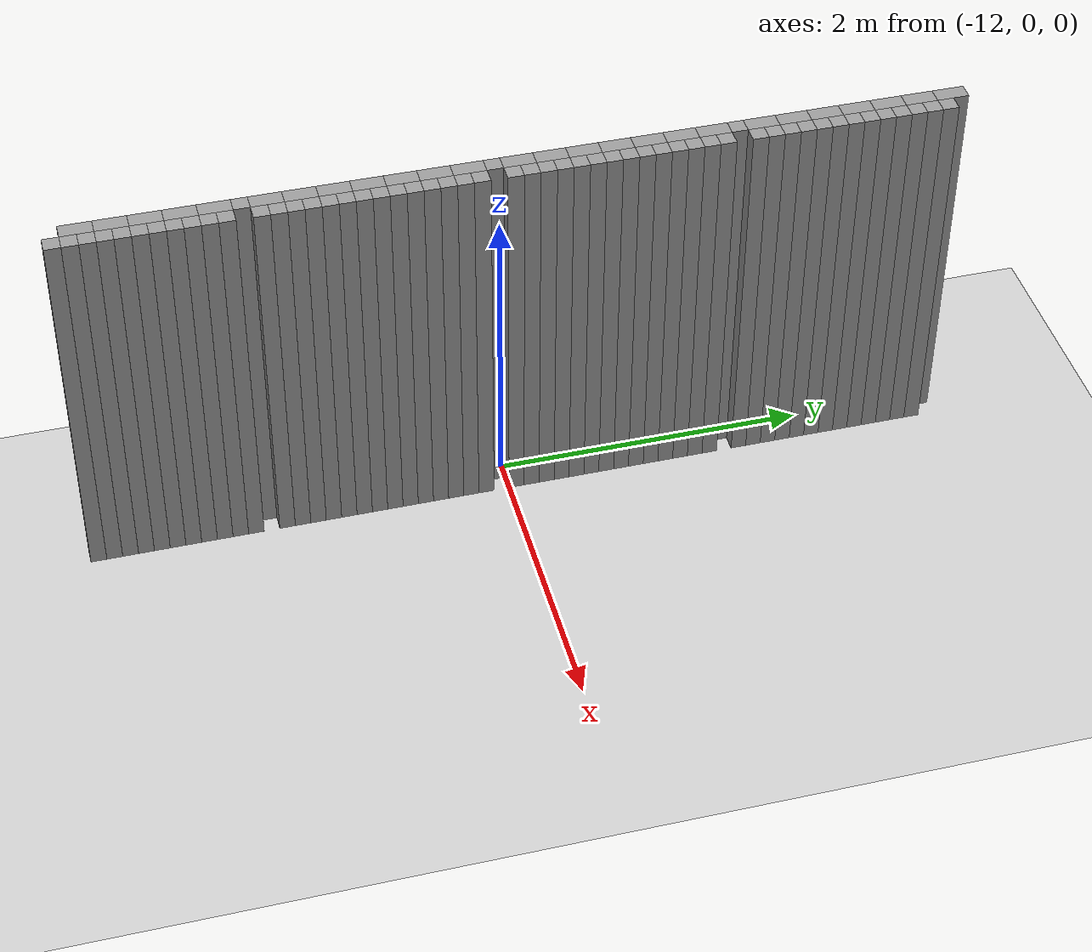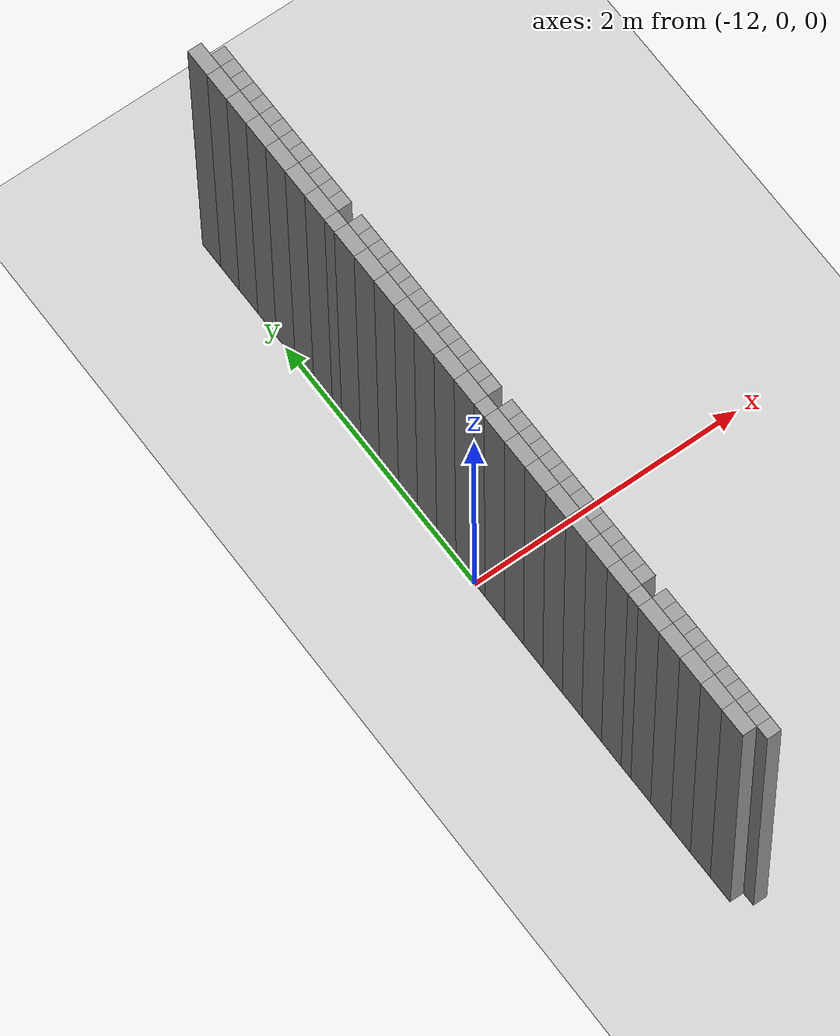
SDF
<sdf version="1.6">
 <world name="default">
  <include><uri>model://sun</uri></include>
  <include><uri>model://ground_plane</uri></include>
  <model name="stage_test">
   <static>1</static>
   <pose>-12 -12 0 0 0 0</pose>
   <link name="Wall_65">
    <pose>0.05 14.8 0 0 0 0</pose>
    <collision name="Wall_65_collision">
     <pose>0 0 1.25 0 0 0</pose>
     <geometry><box><size>0.1 0.1999999999999993 2.5</size></box></geometry>
    </collision>
    <visual name="Wall_65_visual">
     <pose>0 0 1.25 0 0 0</pose>
     <geometry><box><size>0.1 0.1999999999999993 2.5</size></box></geometry>
     <material>
      <script><uri>file://media/materials/scripts/gazebo.material</uri><name>Gazebo/Grey</name></script>
      <ambient>1 1 1 1</ambient>
     </material>
    </visual>
   </link>
   <link name="Wall_67">
    <pose>0.15 14.75 0 0 0 0</pose>
    <collision name="Wall_67_collision">
     <pose>0 0 1.25 0 0 0</pose>
     <geometry><box><size>0.1 0.09999999999999964 2.5</size></box></geometry>
    </collision>
    <visual name="Wall_67_visual">
     <pose>0 0 1.25 0 0 0</pose>
     <geometry><box><size>0.1 0.09999999999999964 2.5</size></box></geometry>
     <material>
      <script><uri>file://media/materials/scripts/gazebo.material</uri><name>Gazebo/Grey</name></script>
      <ambient>1 1 1 1</ambient>
     </material>
    </visual>
   </link>
   <link name="Wall_68">
    <pose>0.05 14.600000000000001 0 0 0 0</pose>
    <collision name="Wall_68_collision">
     <pose>0 0 1.25 0 0 0</pose>
     <geometry><box><size>0.1 0.20000000000000107 2.5</size></box></geometry>
    </collision>
    <visual name="Wall_68_visual">
     <pose>0 0 1.25 0 0 0</pose>
     <geometry><box><size>0.1 0.20000000000000107 2.5</size></box></geometry>
     <material>
      <script><uri>file://media/materials/scripts/gazebo.material</uri><name>Gazebo/Grey</name></script>
      <ambient>1 1 1 1</ambient>
     </material>
    </visual>
   </link>
   <link name="Wall_69">
    <pose>0.05 14.4 0 0 0 0</pose>
    <collision name="Wall_69_collision">
     <pose>0 0 1.25 0 0 0</pose>
     <geometry><box><size>0.1 0.1999999999999993 2.5</size></box></geometry>
    </collision>
    <visual name="Wall_69_visual">
     <pose>0 0 1.25 0 0 0</pose>
     <geometry><box><size>0.1 0.1999999999999993 2.5</size></box></geometry>
     <material>
      <script><uri>file://media/materials/scripts/gazebo.material</uri><name>Gazebo/Grey</name></script>
      <ambient>1 1 1 1</ambient>
     </material>
    </visual>
   </link>
   <link name="Wall_70">
    <pose>0.15 14.650000000000002 0 0 0 0</pose>
    <collision name="Wall_70_collision">
     <pose>0 0 1.25 0 0 0</pose>
     <geometry><box><size>0.1 0.09999999999999964 2.5</size></box></geometry>
    </collision>
    <visual name="Wall_70_visual">
     <pose>0 0 1.25 0 0 0</pose>
     <geometry><box><size>0.1 0.09999999999999964 2.5</size></box></geometry>
     <material>
      <script><uri>file://media/materials/scripts/gazebo.material</uri><name>Gazebo/Grey</name></script>
      <ambient>1 1 1 1</ambient>
     </material>
    </visual>
   </link>
   <link name="Wall_71">
    <pose>0.15 14.55 0 0 0 0</pose>
    <collision name="Wall_71_collision">
     <pose>0 0 1.25 0 0 0</pose>
     <geometry><box><size>0.1 0.10000000000000142 2.5</size></box></geometry>
    </collision>
    <visual name="Wall_71_visual">
     <pose>0 0 1.25 0 0 0</pose>
     <geometry><box><size>0.1 0.10000000000000142 2.5</size></box></geometry>
     <material>
      <script><uri>file://media/materials/scripts/gazebo.material</uri><name>Gazebo/Grey</name></script>
      <ambient>1 1 1 1</ambient>
     </material>
    </visual>
   </link>
   <link name="Wall_72">
    <pose>0.15 14.45 0 0 0 0</pose>
    <collision name="Wall_72_collision">
     <pose>0 0 1.25 0 0 0</pose>
     <geometry><box><size>0.1 0.09999999999999964 2.5</size></box></geometry>
    </collision>
    <visual name="Wall_72_visual">
     <pose>0 0 1.25 0 0 0</pose>
     <geometry><box><size>0.1 0.09999999999999964 2.5</size></box></geometry>
     <material>
      <script><uri>file://media/materials/scripts/gazebo.material</uri><name>Gazebo/Grey</name></script>
      <ambient>1 1 1 1</ambient>
     </material>
    </visual>
   </link>
   <link name="Wall_73">
    <pose>0.15 14.35 0 0 0 0</pose>
    <collision name="Wall_73_collision">
     <pose>0 0 1.25 0 0 0</pose>
     <geometry><box><size>0.1 0.09999999999999964 2.5</size></box></geometry>
    </collision>
    <visual name="Wall_73_visual">
     <pose>0 0 1.25 0 0 0</pose>
     <geometry><box><size>0.1 0.09999999999999964 2.5</size></box></geometry>
     <material>
      <script><uri>file://media/materials/scripts/gazebo.material</uri><name>Gazebo/Grey</name></script>
      <ambient>1 1 1 1</ambient>
     </material>
    </visual>
   </link>
   <link name="Wall_74">
    <pose>0.05 14.2 0 0 0 0</pose>
    <collision name="Wall_74_collision">
     <pose>0 0 1.25 0 0 0</pose>
     <geometry><box><size>0.1 0.1999999999999993 2.5</size></box></geometry>
    </collision>
    <visual name="Wall_74_visual">
     <pose>0 0 1.25 0 0 0</pose>
     <geometry><box><size>0.1 0.1999999999999993 2.5</size></box></geometry>
     <material>
      <script><uri>file://media/materials/scripts/gazebo.material</uri><name>Gazebo/Grey</name></script>
      <ambient>1 1 1 1</ambient>
     </material>
    </visual>
   </link>
   <link name="Wall_75">
    <pose>0.05 14.000000000000002 0 0 0 0</pose>
    <collision name="Wall_75_collision">
     <pose>0 0 1.25 0 0 0</pose>
     <geometry><box><size>0.1 0.20000000000000107 2.5</size></box></geometry>
    </collision>
    <visual name="Wall_75_visual">
     <pose>0 0 1.25 0 0 0</pose>
     <geometry><box><size>0.1 0.20000000000000107 2.5</size></box></geometry>
     <material>
      <script><uri>file://media/materials/scripts/gazebo.material</uri><name>Gazebo/Grey</name></script>
      <ambient>1 1 1 1</ambient>
     </material>
    </visual>
   </link>
   <link name="Wall_76">
    <pose>0.15 14.25 0 0 0 0</pose>
    <collision name="Wall_76_collision">
     <pose>0 0 1.25 0 0 0</pose>
     <geometry><box><size>0.1 0.09999999999999964 2.5</size></box></geometry>
    </collision>
    <visual name="Wall_76_visual">
     <pose>0 0 1.25 0 0 0</pose>
     <geometry><box><size>0.1 0.09999999999999964 2.5</size></box></geometry>
     <material>
      <script><uri>file://media/materials/scripts/gazebo.material</uri><name>Gazebo/Grey</name></script>
      <ambient>1 1 1 1</ambient>
     </material>
    </visual>
   </link>
   <link name="Wall_77">
    <pose>0.15 14.150000000000002 0 0 0 0</pose>
    <collision name="Wall_77_collision">
     <pose>0 0 1.25 0 0 0</pose>
     <geometry><box><size>0.1 0.09999999999999964 2.5</size></box></geometry>
    </collision>
    <visual name="Wall_77_visual">
     <pose>0 0 1.25 0 0 0</pose>
     <geometry><box><size>0.1 0.09999999999999964 2.5</size></box></geometry>
     <material>
      <script><uri>file://media/materials/scripts/gazebo.material</uri><name>Gazebo/Grey</name></script>
      <ambient>1 1 1 1</ambient>
     </material>
    </visual>
   </link>
   <link name="Wall_78">
    <pose>0.15 14.05 0 0 0 0</pose>
    <collision name="Wall_78_collision">
     <pose>0 0 1.25 0 0 0</pose>
     <geometry><box><size>0.1 0.10000000000000142 2.5</size></box></geometry>
    </collision>
    <visual name="Wall_78_visual">
     <pose>0 0 1.25 0 0 0</pose>
     <geometry><box><size>0.1 0.10000000000000142 2.5</size></box></geometry>
     <material>
      <script><uri>file://media/materials/scripts/gazebo.material</uri><name>Gazebo/Grey</name></script>
      <ambient>1 1 1 1</ambient>
     </material>
    </visual>
   </link>
   <link name="Wall_79">
    <pose>0.15 13.95 0 0 0 0</pose>
    <collision name="Wall_79_collision">
     <pose>0 0 1.25 0 0 0</pose>
     <geometry><box><size>0.1 0.09999999999999964 2.5</size></box></geometry>
    </collision>
    <visual name="Wall_79_visual">
     <pose>0 0 1.25 0 0 0</pose>
     <geometry><box><size>0.1 0.09999999999999964 2.5</size></box></geometry>
     <material>
      <script><uri>file://media/materials/scripts/gazebo.material</uri><name>Gazebo/Grey</name></script>
      <ambient>1 1 1 1</ambient>
     </material>
    </visual>
   </link>
   <link name="Wall_80">
    <pose>0.05 13.8 0 0 0 0</pose>
    <collision name="Wall_80_collision">
     <pose>0 0 1.25 0 0 0</pose>
     <geometry><box><size>0.1 0.1999999999999993 2.5</size></box></geometry>
    </collision>
    <visual name="Wall_80_visual">
     <pose>0 0 1.25 0 0 0</pose>
     <geometry><box><size>0.1 0.1999999999999993 2.5</size></box></geometry>
     <material>
      <script><uri>file://media/materials/scripts/gazebo.material</uri><name>Gazebo/Grey</name></script>
      <ambient>1 1 1 1</ambient>
     </material>
    </visual>
   </link>
   <link name="Wall_81">
    <pose>0.05 13.600000000000001 0 0 0 0</pose>
    <collision name="Wall_81_collision">
     <pose>0 0 1.25 0 0 0</pose>
     <geometry><box><size>0.1 0.20000000000000107 2.5</size></box></geometry>
    </collision>
    <visual name="Wall_81_visual">
     <pose>0 0 1.25 0 0 0</pose>
     <geometry><box><size>0.1 0.20000000000000107 2.5</size></box></geometry>
     <material>
      <script><uri>file://media/materials/scripts/gazebo.material</uri><name>Gazebo/Grey</name></script>
      <ambient>1 1 1 1</ambient>
     </material>
    </visual>
   </link>
   <link name="Wall_82">
    <pose>0.15 13.85 0 0 0 0</pose>
    <collision name="Wall_82_collision">
     <pose>0 0 1.25 0 0 0</pose>
     <geometry><box><size>0.1 0.09999999999999964 2.5</size></box></geometry>
    </collision>
    <visual name="Wall_82_visual">
     <pose>0 0 1.25 0 0 0</pose>
     <geometry><box><size>0.1 0.09999999999999964 2.5</size></box></geometry>
     <material>
      <script><uri>file://media/materials/scripts/gazebo.material</uri><name>Gazebo/Grey</name></script>
      <ambient>1 1 1 1</ambient>
     </material>
    </visual>
   </link>
   <link name="Wall_83">
    <pose>0.15 13.75 0 0 0 0</pose>
    <collision name="Wall_83_collision">
     <pose>0 0 1.25 0 0 0</pose>
     <geometry><box><size>0.1 0.09999999999999964 2.5</size></box></geometry>
    </collision>
    <visual name="Wall_83_visual">
     <pose>0 0 1.25 0 0 0</pose>
     <geometry><box><size>0.1 0.09999999999999964 2.5</size></box></geometry>
     <material>
      <script><uri>file://media/materials/scripts/gazebo.material</uri><name>Gazebo/Grey</name></script>
      <ambient>1 1 1 1</ambient>
     </material>
    </visual>
   </link>
   <link name="Wall_84">
    <pose>0.15 13.650000000000002 0 0 0 0</pose>
    <collision name="Wall_84_collision">
     <pose>0 0 1.25 0 0 0</pose>
     <geometry><box><size>0.1 0.09999999999999964 2.5</size></box></geometry>
    </collision>
    <visual name="Wall_84_visual">
     <pose>0 0 1.25 0 0 0</pose>
     <geometry><box><size>0.1 0.09999999999999964 2.5</size></box></geometry>
     <material>
      <script><uri>file://media/materials/scripts/gazebo.material</uri><name>Gazebo/Grey</name></script>
      <ambient>1 1 1 1</ambient>
     </material>
    </visual>
   </link>
   <link name="Wall_85">
    <pose>0.15 13.55 0 0 0 0</pose>
    <collision name="Wall_85_collision">
     <pose>0 0 1.25 0 0 0</pose>
     <geometry><box><size>0.1 0.10000000000000142 2.5</size></box></geometry>
    </collision>
    <visual name="Wall_85_visual">
     <pose>0 0 1.25 0 0 0</pose>
     <geometry><box><size>0.1 0.10000000000000142 2.5</size></box></geometry>
     <material>
      <script><uri>file://media/materials/scripts/gazebo.material</uri><name>Gazebo/Grey</name></script>
      <ambient>1 1 1 1</ambient>
     </material>
    </visual>
   </link>
   <link name="Wall_86">
    <pose>0.05 13.45 0 0 0 0</pose>
    <collision name="Wall_86_collision">
     <pose>0 0 1.25 0 0 0</pose>
     <geometry><box><size>0.1 0.09999999999999964 2.5</size></box></geometry>
    </collision>
    <visual name="Wall_86_visual">
     <pose>0 0 1.25 0 0 0</pose>
     <geometry><box><size>0.1 0.09999999999999964 2.5</size></box></geometry>
     <material>
      <script><uri>file://media/materials/scripts/gazebo.material</uri><name>Gazebo/Grey</name></script>
      <ambient>1 1 1 1</ambient>
     </material>
    </visual>
   </link>
   <link name="Wall_87">
    <pose>0.05 13.3 0 0 0 0</pose>
    <collision name="Wall_87_collision">
     <pose>0 0 1.25 0 0 0</pose>
     <geometry><box><size>0.1 0.1999999999999993 2.5</size></box></geometry>
    </collision>
    <visual name="Wall_87_visual">
     <pose>0 0 1.25 0 0 0</pose>
     <geometry><box><size>0.1 0.1999999999999993 2.5</size></box></geometry>
     <material>
      <script><uri>file://media/materials/scripts/gazebo.material</uri><name>Gazebo/Grey</name></script>
      <ambient>1 1 1 1</ambient>
     </material>
    </visual>
   </link>
   <link name="Wall_88">
    <pose>0.15 13.35 0 0 0 0</pose>
    <collision name="Wall_88_collision">
     <pose>0 0 1.25 0 0 0</pose>
     <geometry><box><size>0.1 0.09999999999999964 2.5</size></box></geometry>
    </collision>
    <visual name="Wall_88_visual">
     <pose>0 0 1.25 0 0 0</pose>
     <geometry><box><size>0.1 0.09999999999999964 2.5</size></box></geometry>
     <material>
      <script><uri>file://media/materials/scripts/gazebo.material</uri><name>Gazebo/Grey</name></script>
      <ambient>1 1 1 1</ambient>
     </material>
    </visual>
   </link>
   <link name="Wall_89">
    <pose>0.15 13.25 0 0 0 0</pose>
    <collision name="Wall_89_collision">
     <pose>0 0 1.25 0 0 0</pose>
     <geometry><box><size>0.1 0.09999999999999964 2.5</size></box></geometry>
    </collision>
    <visual name="Wall_89_visual">
     <pose>0 0 1.25 0 0 0</pose>
     <geometry><box><size>0.1 0.09999999999999964 2.5</size></box></geometry>
     <material>
      <script><uri>file://media/materials/scripts/gazebo.material</uri><name>Gazebo/Grey</name></script>
      <ambient>1 1 1 1</ambient>
     </material>
    </visual>
   </link>
   <link name="Wall_90">
    <pose>0.05 13.100000000000001 0 0 0 0</pose>
    <collision name="Wall_90_collision">
     <pose>0 0 1.25 0 0 0</pose>
     <geometry><box><size>0.1 0.20000000000000107 2.5</size></box></geometry>
    </collision>
    <visual name="Wall_90_visual">
     <pose>0 0 1.25 0 0 0</pose>
     <geometry><box><size>0.1 0.20000000000000107 2.5</size></box></geometry>
     <material>
      <script><uri>file://media/materials/scripts/gazebo.material</uri><name>Gazebo/Grey</name></script>
      <ambient>1 1 1 1</ambient>
     </material>
    </visual>
   </link>
   <link name="Wall_91">
    <pose>0.05 12.9 0 0 0 0</pose>
    <collision name="Wall_91_collision">
     <pose>0 0 1.25 0 0 0</pose>
     <geometry><box><size>0.1 0.1999999999999993 2.5</size></box></geometry>
    </collision>
    <visual name="Wall_91_visual">
     <pose>0 0 1.25 0 0 0</pose>
     <geometry><box><size>0.1 0.1999999999999993 2.5</size></box></geometry>
     <material>
      <script><uri>file://media/materials/scripts/gazebo.material</uri><name>Gazebo/Grey</name></script>
      <ambient>1 1 1 1</ambient>
     </material>
    </visual>
   </link>
   <link name="Wall_92">
    <pose>0.15 13.150000000000002 0 0 0 0</pose>
    <collision name="Wall_92_collision">
     <pose>0 0 1.25 0 0 0</pose>
     <geometry><box><size>0.1 0.09999999999999964 2.5</size></box></geometry>
    </collision>
    <visual name="Wall_92_visual">
     <pose>0 0 1.25 0 0 0</pose>
     <geometry><box><size>0.1 0.09999999999999964 2.5</size></box></geometry>
     <material>
      <script><uri>file://media/materials/scripts/gazebo.material</uri><name>Gazebo/Grey</name></script>
      <ambient>1 1 1 1</ambient>
     </material>
    </visual>
   </link>
   <link name="Wall_93">
    <pose>0.15 13.05 0 0 0 0</pose>
    <collision name="Wall_93_collision">
     <pose>0 0 1.25 0 0 0</pose>
     <geometry><box><size>0.1 0.10000000000000142 2.5</size></box></geometry>
    </collision>
    <visual name="Wall_93_visual">
     <pose>0 0 1.25 0 0 0</pose>
     <geometry><box><size>0.1 0.10000000000000142 2.5</size></box></geometry>
     <material>
      <script><uri>file://media/materials/scripts/gazebo.material</uri><name>Gazebo/Grey</name></script>
      <ambient>1 1 1 1</ambient>
     </material>
    </visual>
   </link>
   <link name="Wall_94">
    <pose>0.15 12.95 0 0 0 0</pose>
    <collision name="Wall_94_collision">
     <pose>0 0 1.25 0 0 0</pose>
     <geometry><box><size>0.1 0.09999999999999964 2.5</size></box></geometry>
    </collision>
    <visual name="Wall_94_visual">
     <pose>0 0 1.25 0 0 0</pose>
     <geometry><box><size>0.1 0.09999999999999964 2.5</size></box></geometry>
     <material>
      <script><uri>file://media/materials/scripts/gazebo.material</uri><name>Gazebo/Grey</name></script>
      <ambient>1 1 1 1</ambient>
     </material>
    </visual>
   </link>
   <link name="Wall_95">
    <pose>0.15 12.85 0 0 0 0</pose>
    <collision name="Wall_95_collision">
     <pose>0 0 1.25 0 0 0</pose>
     <geometry><box><size>0.1 0.09999999999999964 2.5</size></box></geometry>
    </collision>
    <visual name="Wall_95_visual">
     <pose>0 0 1.25 0 0 0</pose>
     <geometry><box><size>0.1 0.09999999999999964 2.5</size></box></geometry>
     <material>
      <script><uri>file://media/materials/scripts/gazebo.material</uri><name>Gazebo/Grey</name></script>
      <ambient>1 1 1 1</ambient>
     </material>
    </visual>
   </link>
   <link name="Wall_96">
    <pose>0.05 12.7 0 0 0 0</pose>
    <collision name="Wall_96_collision">
     <pose>0 0 1.25 0 0 0</pose>
     <geometry><box><size>0.1 0.1999999999999993 2.5</size></box></geometry>
    </collision>
    <visual name="Wall_96_visual">
     <pose>0 0 1.25 0 0 0</pose>
     <geometry><box><size>0.1 0.1999999999999993 2.5</size></box></geometry>
     <material>
      <script><uri>file://media/materials/scripts/gazebo.material</uri><name>Gazebo/Grey</name></script>
      <ambient>1 1 1 1</ambient>
     </material>
    </visual>
   </link>
   <link name="Wall_97">
    <pose>0.05 12.500000000000002 0 0 0 0</pose>
    <collision name="Wall_97_collision">
     <pose>0 0 1.25 0 0 0</pose>
     <geometry><box><size>0.1 0.20000000000000107 2.5</size></box></geometry>
    </collision>
    <visual name="Wall_97_visual">
     <pose>0 0 1.25 0 0 0</pose>
     <geometry><box><size>0.1 0.20000000000000107 2.5</size></box></geometry>
     <material>
      <script><uri>file://media/materials/scripts/gazebo.material</uri><name>Gazebo/Grey</name></script>
      <ambient>1 1 1 1</ambient>
     </material>
    </visual>
   </link>
   <link name="Wall_98">
    <pose>0.15 12.75 0 0 0 0</pose>
    <collision name="Wall_98_collision">
     <pose>0 0 1.25 0 0 0</pose>
     <geometry><box><size>0.1 0.09999999999999964 2.5</size></box></geometry>
    </collision>
    <visual name="Wall_98_visual">
     <pose>0 0 1.25 0 0 0</pose>
     <geometry><box><size>0.1 0.09999999999999964 2.5</size></box></geometry>
     <material>
      <script><uri>file://media/materials/scripts/gazebo.material</uri><name>Gazebo/Grey</name></script>
      <ambient>1 1 1 1</ambient>
     </material>
    </visual>
   </link>
   <link name="Wall_99">
    <pose>0.15 12.650000000000002 0 0 0 0</pose>
    <collision name="Wall_99_collision">
     <pose>0 0 1.25 0 0 0</pose>
     <geometry><box><size>0.1 0.09999999999999964 2.5</size></box></geometry>
    </collision>
    <visual name="Wall_99_visual">
     <pose>0 0 1.25 0 0 0</pose>
     <geometry><box><size>0.1 0.09999999999999964 2.5</size></box></geometry>
     <material>
      <script><uri>file://media/materials/scripts/gazebo.material</uri><name>Gazebo/Grey</name></script>
      <ambient>1 1 1 1</ambient>
     </material>
    </visual>
   </link>
   <link name="Wall_100">
    <pose>0.15 12.55 0 0 0 0</pose>
    <collision name="Wall_100_collision">
     <pose>0 0 1.25 0 0 0</pose>
     <geometry><box><size>0.1 0.10000000000000142 2.5</size></box></geometry>
    </collision>
    <visual name="Wall_100_visual">
     <pose>0 0 1.25 0 0 0</pose>
     <geometry><box><size>0.1 0.10000000000000142 2.5</size></box></geometry>
     <material>
      <script><uri>file://media/materials/scripts/gazebo.material</uri><name>Gazebo/Grey</name></script>
      <ambient>1 1 1 1</ambient>
     </material>
    </visual>
   </link>
   <link name="Wall_101">
    <pose>0.15 12.45 0 0 0 0</pose>
    <collision name="Wall_101_collision">
     <pose>0 0 1.25 0 0 0</pose>
     <geometry><box><size>0.1 0.09999999999999964 2.5</size></box></geometry>
    </collision>
    <visual name="Wall_101_visual">
     <pose>0 0 1.25 0 0 0</pose>
     <geometry><box><size>0.1 0.09999999999999964 2.5</size></box></geometry>
     <material>
      <script><uri>file://media/materials/scripts/gazebo.material</uri><name>Gazebo/Grey</name></script>
      <ambient>1 1 1 1</ambient>
     </material>
    </visual>
   </link>
   <link name="Wall_102">
    <pose>0.05 12.3 0 0 0 0</pose>
    <collision name="Wall_102_collision">
     <pose>0 0 1.25 0 0 0</pose>
     <geometry><box><size>0.1 0.1999999999999993 2.5</size></box></geometry>
    </collision>
    <visual name="Wall_102_visual">
     <pose>0 0 1.25 0 0 0</pose>
     <geometry><box><size>0.1 0.1999999999999993 2.5</size></box></geometry>
     <material>
      <script><uri>file://media/materials/scripts/gazebo.material</uri><name>Gazebo/Grey</name></script>
      <ambient>1 1 1 1</ambient>
     </material>
    </visual>
   </link>
   <link name="Wall_103">
    <pose>0.05 12.100000000000001 0 0 0 0</pose>
    <collision name="Wall_103_collision">
     <pose>0 0 1.25 0 0 0</pose>
     <geometry><box><size>0.1 0.20000000000000107 2.5</size></box></geometry>
    </collision>
    <visual name="Wall_103_visual">
     <pose>0 0 1.25 0 0 0</pose>
     <geometry><box><size>0.1 0.20000000000000107 2.5</size></box></geometry>
     <material>
      <script><uri>file://media/materials/scripts/gazebo.material</uri><name>Gazebo/Grey</name></script>
      <ambient>1 1 1 1</ambient>
     </material>
    </visual>
   </link>
   <link name="Wall_104">
    <pose>0.15 12.35 0 0 0 0</pose>
    <collision name="Wall_104_collision">
     <pose>0 0 1.25 0 0 0</pose>
     <geometry><box><size>0.1 0.09999999999999964 2.5</size></box></geometry>
    </collision>
    <visual name="Wall_104_visual">
     <pose>0 0 1.25 0 0 0</pose>
     <geometry><box><size>0.1 0.09999999999999964 2.5</size></box></geometry>
     <material>
      <script><uri>file://media/materials/scripts/gazebo.material</uri><name>Gazebo/Grey</name></script>
      <ambient>1 1 1 1</ambient>
     </material>
    </visual>
   </link>
   <link name="Wall_105">
    <pose>0.15 12.25 0 0 0 0</pose>
    <collision name="Wall_105_collision">
     <pose>0 0 1.25 0 0 0</pose>
     <geometry><box><size>0.1 0.09999999999999964 2.5</size></box></geometry>
    </collision>
    <visual name="Wall_105_visual">
     <pose>0 0 1.25 0 0 0</pose>
     <geometry><box><size>0.1 0.09999999999999964 2.5</size></box></geometry>
     <material>
      <script><uri>file://media/materials/scripts/gazebo.material</uri><name>Gazebo/Grey</name></script>
      <ambient>1 1 1 1</ambient>
     </material>
    </visual>
   </link>
   <link name="Wall_106">
    <pose>0.15 12.150000000000002 0 0 0 0</pose>
    <collision name="Wall_106_collision">
     <pose>0 0 1.25 0 0 0</pose>
     <geometry><box><size>0.1 0.09999999999999964 2.5</size></box></geometry>
    </collision>
    <visual name="Wall_106_visual">
     <pose>0 0 1.25 0 0 0</pose>
     <geometry><box><size>0.1 0.09999999999999964 2.5</size></box></geometry>
     <material>
      <script><uri>file://media/materials/scripts/gazebo.material</uri><name>Gazebo/Grey</name></script>
      <ambient>1 1 1 1</ambient>
     </material>
    </visual>
   </link>
   <link name="Wall_107">
    <pose>0.15 12.05 0 0 0 0</pose>
    <collision name="Wall_107_collision">
     <pose>0 0 1.25 0 0 0</pose>
     <geometry><box><size>0.1 0.10000000000000142 2.5</size></box></geometry>
    </collision>
    <visual name="Wall_107_visual">
     <pose>0 0 1.25 0 0 0</pose>
     <geometry><box><size>0.1 0.10000000000000142 2.5</size></box></geometry>
     <material>
      <script><uri>file://media/materials/scripts/gazebo.material</uri><name>Gazebo/Grey</name></script>
      <ambient>1 1 1 1</ambient>
     </material>
    </visual>
   </link>
   <link name="Wall_280">
    <pose>0.05 11.95 0 0 0 0</pose>
    <collision name="Wall_280_collision">
     <pose>0 0 1.25 0 0 0</pose>
     <geometry><box><size>0.1 0.09999999999999964 2.5</size></box></geometry>
    </collision>
    <visual name="Wall_280_visual">
     <pose>0 0 1.25 0 0 0</pose>
     <geometry><box><size>0.1 0.09999999999999964 2.5</size></box></geometry>
     <material>
      <script><uri>file://media/materials/scripts/gazebo.material</uri><name>Gazebo/Grey</name></script>
      <ambient>1 1 1 1</ambient>
     </material>
    </visual>
   </link>
   <link name="Wall_281">
    <pose>0.05 11.8 0 0 0 0</pose>
    <collision name="Wall_281_collision">
     <pose>0 0 1.25 0 0 0</pose>
     <geometry><box><size>0.1 0.1999999999999993 2.5</size></box></geometry>
    </collision>
    <visual name="Wall_281_visual">
     <pose>0 0 1.25 0 0 0</pose>
     <geometry><box><size>0.1 0.1999999999999993 2.5</size></box></geometry>
     <material>
      <script><uri>file://media/materials/scripts/gazebo.material</uri><name>Gazebo/Grey</name></script>
      <ambient>1 1 1 1</ambient>
     </material>
    </visual>
   </link>
   <link name="Wall_282">
    <pose>0.15 11.85 0 0 0 0</pose>
    <collision name="Wall_282_collision">
     <pose>0 0 1.25 0 0 0</pose>
     <geometry><box><size>0.1 0.09999999999999964 2.5</size></box></geometry>
    </collision>
    <visual name="Wall_282_visual">
     <pose>0 0 1.25 0 0 0</pose>
     <geometry><box><size>0.1 0.09999999999999964 2.5</size></box></geometry>
     <material>
      <script><uri>file://media/materials/scripts/gazebo.material</uri><name>Gazebo/Grey</name></script>
      <ambient>1 1 1 1</ambient>
     </material>
    </visual>
   </link>
   <link name="Wall_283">
    <pose>0.15 11.75 0 0 0 0</pose>
    <collision name="Wall_283_collision">
     <pose>0 0 1.25 0 0 0</pose>
     <geometry><box><size>0.1 0.09999999999999964 2.5</size></box></geometry>
    </collision>
    <visual name="Wall_283_visual">
     <pose>0 0 1.25 0 0 0</pose>
     <geometry><box><size>0.1 0.09999999999999964 2.5</size></box></geometry>
     <material>
      <script><uri>file://media/materials/scripts/gazebo.material</uri><name>Gazebo/Grey</name></script>
      <ambient>1 1 1 1</ambient>
     </material>
    </visual>
   </link>
   <link name="Wall_284">
    <pose>0.05 11.600000000000001 0 0 0 0</pose>
    <collision name="Wall_284_collision">
     <pose>0 0 1.25 0 0 0</pose>
     <geometry><box><size>0.1 0.20000000000000107 2.5</size></box></geometry>
    </collision>
    <visual name="Wall_284_visual">
     <pose>0 0 1.25 0 0 0</pose>
     <geometry><box><size>0.1 0.20000000000000107 2.5</size></box></geometry>
     <material>
      <script><uri>file://media/materials/scripts/gazebo.material</uri><name>Gazebo/Grey</name></script>
      <ambient>1 1 1 1</ambient>
     </material>
    </visual>
   </link>
   <link name="Wall_285">
    <pose>0.05 11.4 0 0 0 0</pose>
    <collision name="Wall_285_collision">
     <pose>0 0 1.25 0 0 0</pose>
     <geometry><box><size>0.1 0.1999999999999993 2.5</size></box></geometry>
    </collision>
    <visual name="Wall_285_visual">
     <pose>0 0 1.25 0 0 0</pose>
     <geometry><box><size>0.1 0.1999999999999993 2.5</size></box></geometry>
     <material>
      <script><uri>file://media/materials/scripts/gazebo.material</uri><name>Gazebo/Grey</name></script>
      <ambient>1 1 1 1</ambient>
     </material>
    </visual>
   </link>
   <link name="Wall_286">
    <pose>0.15 11.650000000000002 0 0 0 0</pose>
    <collision name="Wall_286_collision">
     <pose>0 0 1.25 0 0 0</pose>
     <geometry><box><size>0.1 0.09999999999999964 2.5</size></box></geometry>
    </collision>
    <visual name="Wall_286_visual">
     <pose>0 0 1.25 0 0 0</pose>
     <geometry><box><size>0.1 0.09999999999999964 2.5</size></box></geometry>
     <material>
      <script><uri>file://media/materials/scripts/gazebo.material</uri><name>Gazebo/Grey</name></script>
      <ambient>1 1 1 1</ambient>
     </material>
    </visual>
   </link>
   <link name="Wall_287">
    <pose>0.15 11.55 0 0 0 0</pose>
    <collision name="Wall_287_collision">
     <pose>0 0 1.25 0 0 0</pose>
     <geometry><box><size>0.1 0.10000000000000142 2.5</size></box></geometry>
    </collision>
    <visual name="Wall_287_visual">
     <pose>0 0 1.25 0 0 0</pose>
     <geometry><box><size>0.1 0.10000000000000142 2.5</size></box></geometry>
     <material>
      <script><uri>file://media/materials/scripts/gazebo.material</uri><name>Gazebo/Grey</name></script>
      <ambient>1 1 1 1</ambient>
     </material>
    </visual>
   </link>
   <link name="Wall_288">
    <pose>0.15 11.45 0 0 0 0</pose>
    <collision name="Wall_288_collision">
     <pose>0 0 1.25 0 0 0</pose>
     <geometry><box><size>0.1 0.09999999999999964 2.5</size></box></geometry>
    </collision>
    <visual name="Wall_288_visual">
     <pose>0 0 1.25 0 0 0</pose>
     <geometry><box><size>0.1 0.09999999999999964 2.5</size></box></geometry>
     <material>
      <script><uri>file://media/materials/scripts/gazebo.material</uri><name>Gazebo/Grey</name></script>
      <ambient>1 1 1 1</ambient>
     </material>
    </visual>
   </link>
   <link name="Wall_289">
    <pose>0.15 11.35 0 0 0 0</pose>
    <collision name="Wall_289_collision">
     <pose>0 0 1.25 0 0 0</pose>
     <geometry><box><size>0.1 0.09999999999999964 2.5</size></box></geometry>
    </collision>
    <visual name="Wall_289_visual">
     <pose>0 0 1.25 0 0 0</pose>
     <geometry><box><size>0.1 0.09999999999999964 2.5</size></box></geometry>
     <material>
      <script><uri>file://media/materials/scripts/gazebo.material</uri><name>Gazebo/Grey</name></script>
      <ambient>1 1 1 1</ambient>
     </material>
    </visual>
   </link>
   <link name="Wall_290">
    <pose>0.05 11.2 0 0 0 0</pose>
    <collision name="Wall_290_collision">
     <pose>0 0 1.25 0 0 0</pose>
     <geometry><box><size>0.1 0.1999999999999993 2.5</size></box></geometry>
    </collision>
    <visual name="Wall_290_visual">
     <pose>0 0 1.25 0 0 0</pose>
     <geometry><box><size>0.1 0.1999999999999993 2.5</size></box></geometry>
     <material>
      <script><uri>file://media/materials/scripts/gazebo.material</uri><name>Gazebo/Grey</name></script>
      <ambient>1 1 1 1</ambient>
     </material>
    </visual>
   </link>
   <link name="Wall_291">
    <pose>0.05 11.000000000000002 0 0 0 0</pose>
    <collision name="Wall_291_collision">
     <pose>0 0 1.25 0 0 0</pose>
     <geometry><box><size>0.1 0.20000000000000107 2.5</size></box></geometry>
    </collision>
    <visual name="Wall_291_visual">
     <pose>0 0 1.25 0 0 0</pose>
     <geometry><box><size>0.1 0.20000000000000107 2.5</size></box></geometry>
     <material>
      <script><uri>file://media/materials/scripts/gazebo.material</uri><name>Gazebo/Grey</name></script>
      <ambient>1 1 1 1</ambient>
     </material>
    </visual>
   </link>
   <link name="Wall_292">
    <pose>0.15 11.25 0 0 0 0</pose>
    <collision name="Wall_292_collision">
     <pose>0 0 1.25 0 0 0</pose>
     <geometry><box><size>0.1 0.09999999999999964 2.5</size></box></geometry>
    </collision>
    <visual name="Wall_292_visual">
     <pose>0 0 1.25 0 0 0</pose>
     <geometry><box><size>0.1 0.09999999999999964 2.5</size></box></geometry>
     <material>
      <script><uri>file://media/materials/scripts/gazebo.material</uri><name>Gazebo/Grey</name></script>
      <ambient>1 1 1 1</ambient>
     </material>
    </visual>
   </link>
   <link name="Wall_293">
    <pose>0.15 11.150000000000002 0 0 0 0</pose>
    <collision name="Wall_293_collision">
     <pose>0 0 1.25 0 0 0</pose>
     <geometry><box><size>0.1 0.09999999999999964 2.5</size></box></geometry>
    </collision>
    <visual name="Wall_293_visual">
     <pose>0 0 1.25 0 0 0</pose>
     <geometry><box><size>0.1 0.09999999999999964 2.5</size></box></geometry>
     <material>
      <script><uri>file://media/materials/scripts/gazebo.material</uri><name>Gazebo/Grey</name></script>
      <ambient>1 1 1 1</ambient>
     </material>
    </visual>
   </link>
   <link name="Wall_294">
    <pose>0.15 11.05 0 0 0 0</pose>
    <collision name="Wall_294_collision">
     <pose>0 0 1.25 0 0 0</pose>
     <geometry><box><size>0.1 0.10000000000000142 2.5</size></box></geometry>
    </collision>
    <visual name="Wall_294_visual">
     <pose>0 0 1.25 0 0 0</pose>
     <geometry><box><size>0.1 0.10000000000000142 2.5</size></box></geometry>
     <material>
      <script><uri>file://media/materials/scripts/gazebo.material</uri><name>Gazebo/Grey</name></script>
      <ambient>1 1 1 1</ambient>
     </material>
    </visual>
   </link>
   <link name="Wall_295">
    <pose>0.15 10.95 0 0 0 0</pose>
    <collision name="Wall_295_collision">
     <pose>0 0 1.25 0 0 0</pose>
     <geometry><box><size>0.1 0.09999999999999964 2.5</size></box></geometry>
    </collision>
    <visual name="Wall_295_visual">
     <pose>0 0 1.25 0 0 0</pose>
     <geometry><box><size>0.1 0.09999999999999964 2.5</size></box></geometry>
     <material>
      <script><uri>file://media/materials/scripts/gazebo.material</uri><name>Gazebo/Grey</name></script>
      <ambient>1 1 1 1</ambient>
     </material>
    </visual>
   </link>
   <link name="Wall_296">
    <pose>0.05 10.8 0 0 0 0</pose>
    <collision name="Wall_296_collision">
     <pose>0 0 1.25 0 0 0</pose>
     <geometry><box><size>0.1 0.1999999999999993 2.5</size></box></geometry>
    </collision>
    <visual name="Wall_296_visual">
     <pose>0 0 1.25 0 0 0</pose>
     <geometry><box><size>0.1 0.1999999999999993 2.5</size></box></geometry>
     <material>
      <script><uri>file://media/materials/scripts/gazebo.material</uri><name>Gazebo/Grey</name></script>
      <ambient>1 1 1 1</ambient>
     </material>
    </visual>
   </link>
   <link name="Wall_297">
    <pose>0.05 10.600000000000001 0 0 0 0</pose>
    <collision name="Wall_297_collision">
     <pose>0 0 1.25 0 0 0</pose>
     <geometry><box><size>0.1 0.20000000000000107 2.5</size></box></geometry>
    </collision>
    <visual name="Wall_297_visual">
     <pose>0 0 1.25 0 0 0</pose>
     <geometry><box><size>0.1 0.20000000000000107 2.5</size></box></geometry>
     <material>
      <script><uri>file://media/materials/scripts/gazebo.material</uri><name>Gazebo/Grey</name></script>
      <ambient>1 1 1 1</ambient>
     </material>
    </visual>
   </link>
   <link name="Wall_298">
    <pose>0.15 10.85 0 0 0 0</pose>
    <collision name="Wall_298_collision">
     <pose>0 0 1.25 0 0 0</pose>
     <geometry><box><size>0.1 0.09999999999999964 2.5</size></box></geometry>
    </collision>
    <visual name="Wall_298_visual">
     <pose>0 0 1.25 0 0 0</pose>
     <geometry><box><size>0.1 0.09999999999999964 2.5</size></box></geometry>
     <material>
      <script><uri>file://media/materials/scripts/gazebo.material</uri><name>Gazebo/Grey</name></script>
      <ambient>1 1 1 1</ambient>
     </material>
    </visual>
   </link>
   <link name="Wall_299">
    <pose>0.15 10.75 0 0 0 0</pose>
    <collision name="Wall_299_collision">
     <pose>0 0 1.25 0 0 0</pose>
     <geometry><box><size>0.1 0.09999999999999964 2.5</size></box></geometry>
    </collision>
    <visual name="Wall_299_visual">
     <pose>0 0 1.25 0 0 0</pose>
     <geometry><box><size>0.1 0.09999999999999964 2.5</size></box></geometry>
     <material>
      <script><uri>file://media/materials/scripts/gazebo.material</uri><name>Gazebo/Grey</name></script>
      <ambient>1 1 1 1</ambient>
     </material>
    </visual>
   </link>
   <link name="Wall_300">
    <pose>0.15 10.650000000000002 0 0 0 0</pose>
    <collision name="Wall_300_collision">
     <pose>0 0 1.25 0 0 0</pose>
     <geometry><box><size>0.1 0.09999999999999964 2.5</size></box></geometry>
    </collision>
    <visual name="Wall_300_visual">
     <pose>0 0 1.25 0 0 0</pose>
     <geometry><box><size>0.1 0.09999999999999964 2.5</size></box></geometry>
     <material>
      <script><uri>file://media/materials/scripts/gazebo.material</uri><name>Gazebo/Grey</name></script>
      <ambient>1 1 1 1</ambient>
     </material>
    </visual>
   </link>
   <link name="Wall_301">
    <pose>0.15 10.55 0 0 0 0</pose>
    <collision name="Wall_301_collision">
     <pose>0 0 1.25 0 0 0</pose>
     <geometry><box><size>0.1 0.10000000000000142 2.5</size></box></geometry>
    </collision>
    <visual name="Wall_301_visual">
     <pose>0 0 1.25 0 0 0</pose>
     <geometry><box><size>0.1 0.10000000000000142 2.5</size></box></geometry>
     <material>
      <script><uri>file://media/materials/scripts/gazebo.material</uri><name>Gazebo/Grey</name></script>
      <ambient>1 1 1 1</ambient>
     </material>
    </visual>
   </link>
   <link name="Wall_302">
    <pose>0.05 10.45 0 0 0 0</pose>
    <collision name="Wall_302_collision">
     <pose>0 0 1.25 0 0 0</pose>
     <geometry><box><size>0.1 0.09999999999999964 2.5</size></box></geometry>
    </collision>
    <visual name="Wall_302_visual">
     <pose>0 0 1.25 0 0 0</pose>
     <geometry><box><size>0.1 0.09999999999999964 2.5</size></box></geometry>
     <material>
      <script><uri>file://media/materials/scripts/gazebo.material</uri><name>Gazebo/Grey</name></script>
      <ambient>1 1 1 1</ambient>
     </material>
    </visual>
   </link>
   <link name="Wall_303">
    <pose>0.05 10.3 0 0 0 0</pose>
    <collision name="Wall_303_collision">
     <pose>0 0 1.25 0 0 0</pose>
     <geometry><box><size>0.1 0.1999999999999993 2.5</size></box></geometry>
    </collision>
    <visual name="Wall_303_visual">
     <pose>0 0 1.25 0 0 0</pose>
     <geometry><box><size>0.1 0.1999999999999993 2.5</size></box></geometry>
     <material>
      <script><uri>file://media/materials/scripts/gazebo.material</uri><name>Gazebo/Grey</name></script>
      <ambient>1 1 1 1</ambient>
     </material>
    </visual>
   </link>
   <link name="Wall_304">
    <pose>0.15 10.35 0 0 0 0</pose>
    <collision name="Wall_304_collision">
     <pose>0 0 1.25 0 0 0</pose>
     <geometry><box><size>0.1 0.09999999999999964 2.5</size></box></geometry>
    </collision>
    <visual name="Wall_304_visual">
     <pose>0 0 1.25 0 0 0</pose>
     <geometry><box><size>0.1 0.09999999999999964 2.5</size></box></geometry>
     <material>
      <script><uri>file://media/materials/scripts/gazebo.material</uri><name>Gazebo/Grey</name></script>
      <ambient>1 1 1 1</ambient>
     </material>
    </visual>
   </link>
   <link name="Wall_305">
    <pose>0.15 10.25 0 0 0 0</pose>
    <collision name="Wall_305_collision">
     <pose>0 0 1.25 0 0 0</pose>
     <geometry><box><size>0.1 0.09999999999999964 2.5</size></box></geometry>
    </collision>
    <visual name="Wall_305_visual">
     <pose>0 0 1.25 0 0 0</pose>
     <geometry><box><size>0.1 0.09999999999999964 2.5</size></box></geometry>
     <material>
      <script><uri>file://media/materials/scripts/gazebo.material</uri><name>Gazebo/Grey</name></script>
      <ambient>1 1 1 1</ambient>
     </material>
    </visual>
   </link>
   <link name="Wall_306">
    <pose>0.05 10.100000000000001 0 0 0 0</pose>
    <collision name="Wall_306_collision">
     <pose>0 0 1.25 0 0 0</pose>
     <geometry><box><size>0.1 0.20000000000000107 2.5</size></box></geometry>
    </collision>
    <visual name="Wall_306_visual">
     <pose>0 0 1.25 0 0 0</pose>
     <geometry><box><size>0.1 0.20000000000000107 2.5</size></box></geometry>
     <material>
      <script><uri>file://media/materials/scripts/gazebo.material</uri><name>Gazebo/Grey</name></script>
      <ambient>1 1 1 1</ambient>
     </material>
    </visual>
   </link>
   <link name="Wall_307">
    <pose>0.05 9.9 0 0 0 0</pose>
    <collision name="Wall_307_collision">
     <pose>0 0 1.25 0 0 0</pose>
     <geometry><box><size>0.1 0.1999999999999993 2.5</size></box></geometry>
    </collision>
    <visual name="Wall_307_visual">
     <pose>0 0 1.25 0 0 0</pose>
     <geometry><box><size>0.1 0.1999999999999993 2.5</size></box></geometry>
     <material>
      <script><uri>file://media/materials/scripts/gazebo.material</uri><name>Gazebo/Grey</name></script>
      <ambient>1 1 1 1</ambient>
     </material>
    </visual>
   </link>
   <link name="Wall_308">
    <pose>0.15 10.150000000000002 0 0 0 0</pose>
    <collision name="Wall_308_collision">
     <pose>0 0 1.25 0 0 0</pose>
     <geometry><box><size>0.1 0.09999999999999964 2.5</size></box></geometry>
    </collision>
    <visual name="Wall_308_visual">
     <pose>0 0 1.25 0 0 0</pose>
     <geometry><box><size>0.1 0.09999999999999964 2.5</size></box></geometry>
     <material>
      <script><uri>file://media/materials/scripts/gazebo.material</uri><name>Gazebo/Grey</name></script>
      <ambient>1 1 1 1</ambient>
     </material>
    </visual>
   </link>
   <link name="Wall_309">
    <pose>0.15 10.05 0 0 0 0</pose>
    <collision name="Wall_309_collision">
     <pose>0 0 1.25 0 0 0</pose>
     <geometry><box><size>0.1 0.10000000000000142 2.5</size></box></geometry>
    </collision>
    <visual name="Wall_309_visual">
     <pose>0 0 1.25 0 0 0</pose>
     <geometry><box><size>0.1 0.10000000000000142 2.5</size></box></geometry>
     <material>
      <script><uri>file://media/materials/scripts/gazebo.material</uri><name>Gazebo/Grey</name></script>
      <ambient>1 1 1 1</ambient>
     </material>
    </visual>
   </link>
   <link name="Wall_310">
    <pose>0.15 9.95 0 0 0 0</pose>
    <collision name="Wall_310_collision">
     <pose>0 0 1.25 0 0 0</pose>
     <geometry><box><size>0.1 0.09999999999999964 2.5</size></box></geometry>
    </collision>
    <visual name="Wall_310_visual">
     <pose>0 0 1.25 0 0 0</pose>
     <geometry><box><size>0.1 0.09999999999999964 2.5</size></box></geometry>
     <material>
      <script><uri>file://media/materials/scripts/gazebo.material</uri><name>Gazebo/Grey</name></script>
      <ambient>1 1 1 1</ambient>
     </material>
    </visual>
   </link>
   <link name="Wall_311">
    <pose>0.15 9.85 0 0 0 0</pose>
    <collision name="Wall_311_collision">
     <pose>0 0 1.25 0 0 0</pose>
     <geometry><box><size>0.1 0.09999999999999964 2.5</size></box></geometry>
    </collision>
    <visual name="Wall_311_visual">
     <pose>0 0 1.25 0 0 0</pose>
     <geometry><box><size>0.1 0.09999999999999964 2.5</size></box></geometry>
     <material>
      <script><uri>file://media/materials/scripts/gazebo.material</uri><name>Gazebo/Grey</name></script>
      <ambient>1 1 1 1</ambient>
     </material>
    </visual>
   </link>
   <link name="Wall_312">
    <pose>0.05 9.700000000000001 0 0 0 0</pose>
    <collision name="Wall_312_collision">
     <pose>0 0 1.25 0 0 0</pose>
     <geometry><box><size>0.1 0.1999999999999993 2.5</size></box></geometry>
    </collision>
    <visual name="Wall_312_visual">
     <pose>0 0 1.25 0 0 0</pose>
     <geometry><box><size>0.1 0.1999999999999993 2.5</size></box></geometry>
     <material>
      <script><uri>file://media/materials/scripts/gazebo.material</uri><name>Gazebo/Grey</name></script>
      <ambient>1 1 1 1</ambient>
     </material>
    </visual>
   </link>
   <link name="Wall_313">
    <pose>0.05 9.5 0 0 0 0</pose>
    <collision name="Wall_313_collision">
     <pose>0 0 1.25 0 0 0</pose>
     <geometry><box><size>0.1 0.20000000000000107 2.5</size></box></geometry>
    </collision>
    <visual name="Wall_313_visual">
     <pose>0 0 1.25 0 0 0</pose>
     <geometry><box><size>0.1 0.20000000000000107 2.5</size></box></geometry>
     <material>
      <script><uri>file://media/materials/scripts/gazebo.material</uri><name>Gazebo/Grey</name></script>
      <ambient>1 1 1 1</ambient>
     </material>
    </visual>
   </link>
   <link name="Wall_314">
    <pose>0.15 9.75 0 0 0 0</pose>
    <collision name="Wall_314_collision">
     <pose>0 0 1.25 0 0 0</pose>
     <geometry><box><size>0.1 0.09999999999999964 2.5</size></box></geometry>
    </collision>
    <visual name="Wall_314_visual">
     <pose>0 0 1.25 0 0 0</pose>
     <geometry><box><size>0.1 0.09999999999999964 2.5</size></box></geometry>
     <material>
      <script><uri>file://media/materials/scripts/gazebo.material</uri><name>Gazebo/Grey</name></script>
      <ambient>1 1 1 1</ambient>
     </material>
    </visual>
   </link>
   <link name="Wall_315">
    <pose>0.15 9.650000000000002 0 0 0 0</pose>
    <collision name="Wall_315_collision">
     <pose>0 0 1.25 0 0 0</pose>
     <geometry><box><size>0.1 0.09999999999999964 2.5</size></box></geometry>
    </collision>
    <visual name="Wall_315_visual">
     <pose>0 0 1.25 0 0 0</pose>
     <geometry><box><size>0.1 0.09999999999999964 2.5</size></box></geometry>
     <material>
      <script><uri>file://media/materials/scripts/gazebo.material</uri><name>Gazebo/Grey</name></script>
      <ambient>1 1 1 1</ambient>
     </material>
    </visual>
   </link>
   <link name="Wall_316">
    <pose>0.15 9.55 0 0 0 0</pose>
    <collision name="Wall_316_collision">
     <pose>0 0 1.25 0 0 0</pose>
     <geometry><box><size>0.1 0.10000000000000142 2.5</size></box></geometry>
    </collision>
    <visual name="Wall_316_visual">
     <pose>0 0 1.25 0 0 0</pose>
     <geometry><box><size>0.1 0.10000000000000142 2.5</size></box></geometry>
     <material>
      <script><uri>file://media/materials/scripts/gazebo.material</uri><name>Gazebo/Grey</name></script>
      <ambient>1 1 1 1</ambient>
     </material>
    </visual>
   </link>
   <link name="Wall_317">
    <pose>0.15 9.45 0 0 0 0</pose>
    <collision name="Wall_317_collision">
     <pose>0 0 1.25 0 0 0</pose>
     <geometry><box><size>0.1 0.09999999999999964 2.5</size></box></geometry>
    </collision>
    <visual name="Wall_317_visual">
     <pose>0 0 1.25 0 0 0</pose>
     <geometry><box><size>0.1 0.09999999999999964 2.5</size></box></geometry>
     <material>
      <script><uri>file://media/materials/scripts/gazebo.material</uri><name>Gazebo/Grey</name></script>
      <ambient>1 1 1 1</ambient>
     </material>
    </visual>
   </link>
   <link name="Wall_320">
    <pose>0.15 9.35 0 0 0 0</pose>
    <collision name="Wall_320_collision">
     <pose>0 0 1.25 0 0 0</pose>
     <geometry><box><size>0.1 0.09999999999999964 2.5</size></box></geometry>
    </collision>
    <visual name="Wall_320_visual">
     <pose>0 0 1.25 0 0 0</pose>
     <geometry><box><size>0.1 0.09999999999999964 2.5</size></box></geometry>
     <material>
      <script><uri>file://media/materials/scripts/gazebo.material</uri><name>Gazebo/Grey</name></script>
      <ambient>1 1 1 1</ambient>
     </material>
    </visual>
   </link>
  </model>
 </world>
</sdf>
